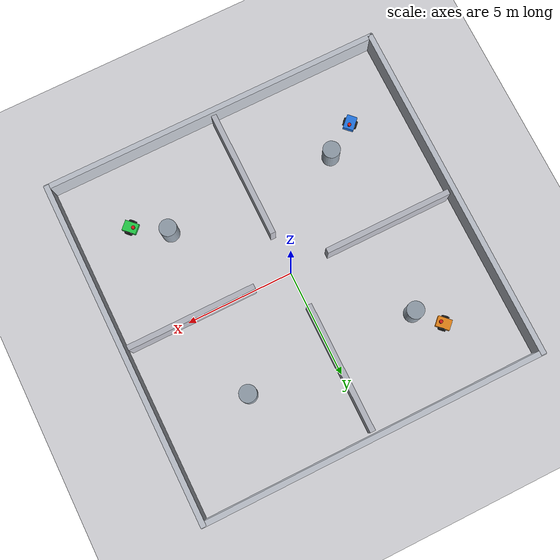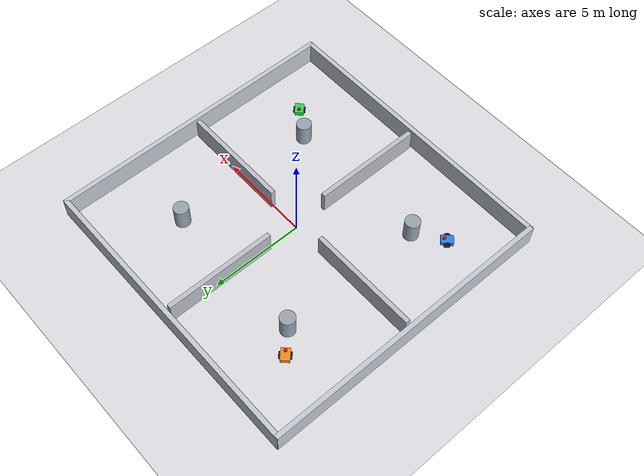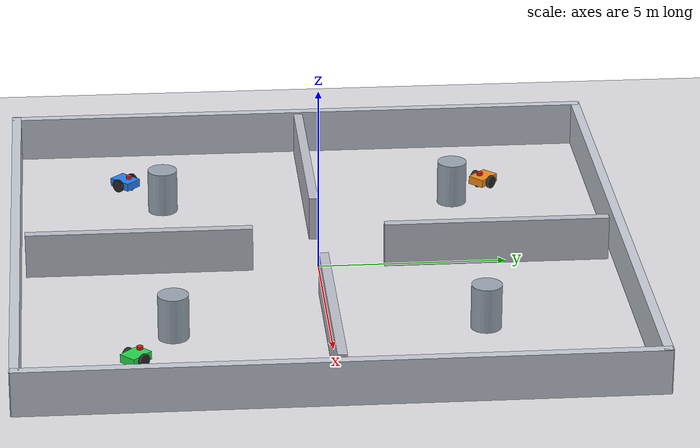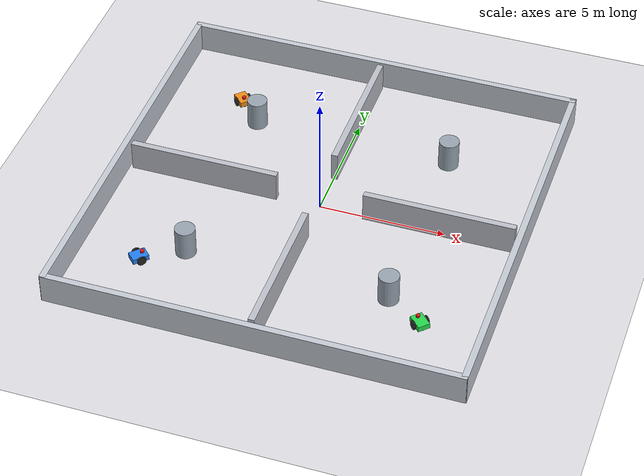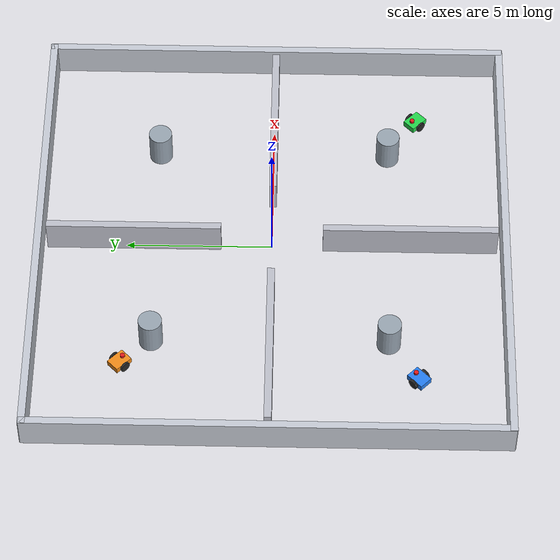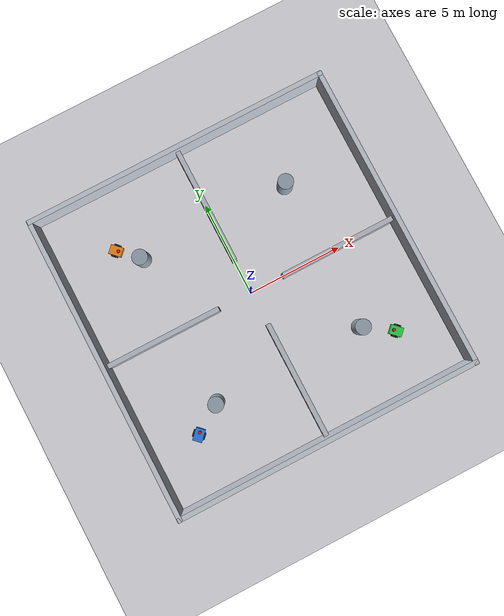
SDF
<?xml version="1.0" ?>
<sdf version="1.9">
  <world name="problem2_exploration_world">
    <physics name="1ms" type="ignored">
      <max_step_size>0.001</max_step_size>
      <real_time_factor>1.0</real_time_factor>
    </physics>
    <plugin filename="gz-sim-physics-system" name="gz::sim::systems::Physics"/>
    <plugin filename="gz-sim-user-commands-system" name="gz::sim::systems::UserCommands"/>
    <plugin filename="gz-sim-scene-broadcaster-system" name="gz::sim::systems::SceneBroadcaster"/>
    <plugin filename="gz-sim-sensors-system" name="gz::sim::systems::Sensors">
      <render_engine>ogre</render_engine>
    </plugin>

    <scene>
      <ambient>1.0 1.0 1.0 1</ambient>
      <background>0.90 0.94 0.98 1</background>
      <shadows>false</shadows>
    </scene>
    <light type="directional" name="sun">
      <diffuse>1 1 1 1</diffuse>
      <specular>0.4 0.4 0.4 1</specular>
      <direction>-0.5 0.5 -1</direction>
    </light>

    <!-- Ground Plane -->
    <model name="ground_plane">
      <static>true</static>
      <link name="link">
        <collision name="collision"><geometry><plane><normal>0 0 1</normal><size>40 40</size></plane></geometry></collision>
        <visual name="visual">
          <geometry><plane><normal>0 0 1</normal><size>40 40</size></plane></geometry>
          <material><ambient>0.88 0.88 0.90 1</ambient><diffuse>0.88 0.88 0.90 1</diffuse></material>
        </visual>
      </link>
    </model>

    <!-- Outer Perimeter Walls (16m x 16m) with Ambient + Diffuse -->
    <model name="wall_north">
      <static>true</static><pose>0 8.0 0.6 0 0 0</pose>
      <link name="link">
        <visual name="v"><geometry><box><size>16.2 0.25 1.2</size></box></geometry>
          <material><ambient>0.78 0.80 0.84 1</ambient><diffuse>0.78 0.80 0.84 1</diffuse></material>
        </visual>
        <collision name="c"><geometry><box><size>16.2 0.25 1.2</size></box></geometry></collision>
      </link>
    </model>
    <model name="wall_south">
      <static>true</static><pose>0 -8.0 0.6 0 0 0</pose>
      <link name="link">
        <visual name="v"><geometry><box><size>16.2 0.25 1.2</size></box></geometry>
          <material><ambient>0.78 0.80 0.84 1</ambient><diffuse>0.78 0.80 0.84 1</diffuse></material>
        </visual>
        <collision name="c"><geometry><box><size>16.2 0.25 1.2</size></box></geometry></collision>
      </link>
    </model>
    <model name="wall_east">
      <static>true</static><pose>8.0 0 0.6 0 0 0</pose>
      <link name="link">
        <visual name="v"><geometry><box><size>0.25 16.2 1.2</size></box></geometry>
          <material><ambient>0.78 0.80 0.84 1</ambient><diffuse>0.78 0.80 0.84 1</diffuse></material>
        </visual>
        <collision name="c"><geometry><box><size>0.25 16.2 1.2</size></box></geometry></collision>
      </link>
    </model>
    <model name="wall_west">
      <static>true</static><pose>-8.0 0 0.6 0 0 0</pose>
      <link name="link">
        <visual name="v"><geometry><box><size>0.25 16.2 1.2</size></box></geometry>
          <material><ambient>0.78 0.80 0.84 1</ambient><diffuse>0.78 0.80 0.84 1</diffuse></material>
        </visual>
        <collision name="c"><geometry><box><size>0.25 16.2 1.2</size></box></geometry></collision>
      </link>
    </model>

    <!-- Multi-Room Partition Walls with Wide Doorways (doorway width 3.5m) -->
    <model name="partition_h_west">
      <static>true</static><pose>-4.75 0.0 0.6 0 0 0</pose>
      <link name="link">
        <visual name="v"><geometry><box><size>6.0 0.25 1.2</size></box></geometry>
          <material><ambient>0.75 0.76 0.80 1</ambient><diffuse>0.75 0.76 0.80 1</diffuse></material>
        </visual>
        <collision name="c"><geometry><box><size>6.0 0.25 1.2</size></box></geometry></collision>
      </link>
    </model>
    <model name="partition_h_east">
      <static>true</static><pose>4.75 0.0 0.6 0 0 0</pose>
      <link name="link">
        <visual name="v"><geometry><box><size>6.0 0.25 1.2</size></box></geometry>
          <material><ambient>0.75 0.76 0.80 1</ambient><diffuse>0.75 0.76 0.80 1</diffuse></material>
        </visual>
        <collision name="c"><geometry><box><size>6.0 0.25 1.2</size></box></geometry></collision>
      </link>
    </model>
    <model name="partition_v_south">
      <static>true</static><pose>0.0 -4.75 0.6 0 0 0</pose>
      <link name="link">
        <visual name="v"><geometry><box><size>0.25 6.0 1.2</size></box></geometry>
          <material><ambient>0.75 0.76 0.80 1</ambient><diffuse>0.75 0.76 0.80 1</diffuse></material>
        </visual>
        <collision name="c"><geometry><box><size>0.25 6.0 1.2</size></box></geometry></collision>
      </link>
    </model>
    <model name="partition_v_north">
      <static>true</static><pose>0.0 4.75 0.6 0 0 0</pose>
      <link name="link">
        <visual name="v"><geometry><box><size>0.25 6.0 1.2</size></box></geometry>
          <material><ambient>0.75 0.76 0.80 1</ambient><diffuse>0.75 0.76 0.80 1</diffuse></material>
        </visual>
        <collision name="c"><geometry><box><size>0.25 6.0 1.2</size></box></geometry></collision>
      </link>
    </model>

    <!-- Interior Obstacles & Columns to Map -->
    <model name="column_sw">
      <static>true</static><pose>-4.0 -4.0 0.6 0 0 0</pose>
      <link name="link">
        <visual name="v"><geometry><cylinder><radius>0.4</radius><length>1.2</length></cylinder></geometry>
          <material><ambient>0.6 0.65 0.7 1</ambient><diffuse>0.6 0.65 0.7 1</diffuse></material>
        </visual>
        <collision name="c"><geometry><cylinder><radius>0.4</radius><length>1.2</length></cylinder></geometry></collision>
      </link>
    </model>
    <model name="column_se">
      <static>true</static><pose>4.0 -4.0 0.6 0 0 0</pose>
      <link name="link">
        <visual name="v"><geometry><cylinder><radius>0.4</radius><length>1.2</length></cylinder></geometry>
          <material><ambient>0.6 0.65 0.7 1</ambient><diffuse>0.6 0.65 0.7 1</diffuse></material>
        </visual>
        <collision name="c"><geometry><cylinder><radius>0.4</radius><length>1.2</length></cylinder></geometry></collision>
      </link>
    </model>
    <model name="column_nw">
      <static>true</static><pose>-4.0 4.0 0.6 0 0 0</pose>
      <link name="link">
        <visual name="v"><geometry><cylinder><radius>0.4</radius><length>1.2</length></cylinder></geometry>
          <material><ambient>0.6 0.65 0.7 1</ambient><diffuse>0.6 0.65 0.7 1</diffuse></material>
        </visual>
        <collision name="c"><geometry><cylinder><radius>0.4</radius><length>1.2</length></cylinder></geometry></collision>
      </link>
    </model>
    <model name="column_ne">
      <static>true</static><pose>4.0 4.0 0.6 0 0 0</pose>
      <link name="link">
        <visual name="v"><geometry><cylinder><radius>0.4</radius><length>1.2</length></cylinder></geometry>
          <material><ambient>0.6 0.65 0.7 1</ambient><diffuse>0.6 0.65 0.7 1</diffuse></material>
        </visual>
        <collision name="c"><geometry><cylinder><radius>0.4</radius><length>1.2</length></cylinder></geometry></collision>
      </link>
    </model>

    <!-- ==================== ROBOT 1 (Southwest Room, Blue) ==================== -->
    <model name="robot1">
      <pose>-5.5 -5.0 0.22 0 0 0.785</pose>
      <link name="base_link">
        <inertial><mass>1.2</mass><inertia><ixx>0.04</ixx><iyy>0.08</iyy><izz>0.10</izz></inertia></inertial>
        <collision name="c"><geometry><box><size>0.65 0.48 0.22</size></box></geometry></collision>
        <visual name="v"><geometry><box><size>0.65 0.48 0.22</size></box></geometry>
          <material><ambient>0.15 0.5 0.95 1</ambient><diffuse>0.15 0.5 0.95 1</diffuse></material>
        </visual>
      </link>
      <link name="left_wheel">
        <pose>0 0.28 -0.02 0 0 0</pose>
        <inertial><mass>0.2</mass><inertia><ixx>0.003</ixx><iyy>0.003</iyy><izz>0.003</izz></inertia></inertial>
        <collision name="c"><pose>0 0 0 1.5708 0 0</pose><geometry><cylinder><radius>0.18</radius><length>0.07</length></cylinder></geometry>
          <surface><friction><ode><mu>10.0</mu><mu2>10.0</mu2></ode></friction></surface>
        </collision>
        <visual name="v"><pose>0 0 0 1.5708 0 0</pose><geometry><cylinder><radius>0.18</radius><length>0.07</length></cylinder></geometry>
          <material><ambient>0.15 0.15 0.15 1</ambient><diffuse>0.15 0.15 0.15 1</diffuse></material>
        </visual>
      </link>
      <link name="right_wheel">
        <pose>0 -0.28 -0.02 0 0 0</pose>
        <inertial><mass>0.2</mass><inertia><ixx>0.003</ixx><iyy>0.003</iyy><izz>0.003</izz></inertia></inertial>
        <collision name="c"><pose>0 0 0 1.5708 0 0</pose><geometry><cylinder><radius>0.18</radius><length>0.07</length></cylinder></geometry>
          <surface><friction><ode><mu>10.0</mu><mu2>10.0</mu2></ode></friction></surface>
        </collision>
        <visual name="v"><pose>0 0 0 1.5708 0 0</pose><geometry><cylinder><radius>0.18</radius><length>0.07</length></cylinder></geometry>
          <material><ambient>0.15 0.15 0.15 1</ambient><diffuse>0.15 0.15 0.15 1</diffuse></material>
        </visual>
      </link>
      <link name="caster_f">
        <pose>0.24 0 -0.10 0 0 0</pose>
        <inertial><mass>0.05</mass><inertia><ixx>0.0001</ixx><iyy>0.0001</iyy><izz>0.0001</izz></inertia></inertial>
        <collision name="c"><geometry><sphere><radius>0.08</radius></sphere></geometry><surface><friction><ode><mu>0.01</mu><mu2>0.01</mu2></ode></friction></surface></collision>
        <visual name="v"><geometry><sphere><radius>0.08</radius></sphere></geometry><material><ambient>0.3 0.3 0.3 1</ambient><diffuse>0.3 0.3 0.3 1</diffuse></material></visual>
      </link>
      <link name="caster_r">
        <pose>-0.24 0 -0.10 0 0 0</pose>
        <inertial><mass>0.05</mass><inertia><ixx>0.0001</ixx><iyy>0.0001</iyy><izz>0.0001</izz></inertia></inertial>
        <collision name="c"><geometry><sphere><radius>0.08</radius></sphere></geometry><surface><friction><ode><mu>0.01</mu><mu2>0.01</mu2></ode></friction></surface></collision>
        <visual name="v"><geometry><sphere><radius>0.08</radius></sphere></geometry><material><ambient>0.3 0.3 0.3 1</ambient><diffuse>0.3 0.3 0.3 1</diffuse></material></visual>
      </link>
      <link name="lidar_link">
        <pose>0.15 0 0.20 0 0 0</pose>
        <inertial><mass>0.08</mass><inertia><ixx>0.0001</ixx><iyy>0.0001</iyy><izz>0.0001</izz></inertia></inertial>
        <visual name="v"><geometry><cylinder><radius>0.08</radius><length>0.08</length></cylinder></geometry><material><ambient>0.9 0.1 0.1 1</ambient><diffuse>0.9 0.1 0.1 1</diffuse></material></visual>
        <sensor name="lidar" type="gpu_lidar">
          <always_on>true</always_on><visualize>true</visualize><update_rate>10</update_rate>
          <topic>/robot1/scan</topic>
          <lidar>
            <scan><horizontal><samples>180</samples><resolution>1</resolution><min_angle>-3.14159</min_angle><max_angle>3.14159</max_angle></horizontal></scan>
            <range><min>0.25</min><max>8.0</max><resolution>0.03</resolution></range>
          </lidar>
        </sensor>
      </link>
      <joint name="lwj1" type="revolute"><parent>base_link</parent><child>left_wheel</child><axis><xyz>0 1 0</xyz></axis></joint>
      <joint name="rwj1" type="revolute"><parent>base_link</parent><child>right_wheel</child><axis><xyz>0 1 0</xyz></axis></joint>
      <joint name="cfj1" type="fixed"><parent>base_link</parent><child>caster_f</child></joint>
      <joint name="crj1" type="fixed"><parent>base_link</parent><child>caster_r</child></joint>
      <joint name="lj1" type="fixed"><parent>base_link</parent><child>lidar_link</child></joint>
      <plugin filename="gz-sim-diff-drive-system" name="gz::sim::systems::DiffDrive">
        <left_joint>lwj1</left_joint><right_joint>rwj1</right_joint>
        <wheel_separation>0.56</wheel_separation><wheel_radius>0.18</wheel_radius>
        <odom_publish_frequency>30</odom_publish_frequency>
        <odom_topic>/robot1/odometry</odom_topic><topic>/robot1/cmd_vel</topic>
      </plugin>
    </model>

    <!-- ==================== ROBOT 2 (Southeast Room, Green) ==================== -->
    <model name="robot2">
      <pose>5.5 -5.0 0.22 0 0 2.356</pose>
      <link name="base_link">
        <inertial><mass>1.2</mass><inertia><ixx>0.04</ixx><iyy>0.08</iyy><izz>0.10</izz></inertia></inertial>
        <collision name="c"><geometry><box><size>0.65 0.48 0.22</size></box></geometry></collision>
        <visual name="v"><geometry><box><size>0.65 0.48 0.22</size></box></geometry>
          <material><ambient>0.15 0.85 0.3 1</ambient><diffuse>0.15 0.85 0.3 1</diffuse></material>
        </visual>
      </link>
      <link name="left_wheel">
        <pose>0 0.28 -0.02 0 0 0</pose>
        <inertial><mass>0.2</mass><inertia><ixx>0.003</ixx><iyy>0.003</iyy><izz>0.003</izz></inertia></inertial>
        <collision name="c"><pose>0 0 0 1.5708 0 0</pose><geometry><cylinder><radius>0.18</radius><length>0.07</length></cylinder></geometry>
          <surface><friction><ode><mu>10.0</mu><mu2>10.0</mu2></ode></friction></surface>
        </collision>
        <visual name="v"><pose>0 0 0 1.5708 0 0</pose><geometry><cylinder><radius>0.18</radius><length>0.07</length></cylinder></geometry>
          <material><ambient>0.15 0.15 0.15 1</ambient><diffuse>0.15 0.15 0.15 1</diffuse></material>
        </visual>
      </link>
      <link name="right_wheel">
        <pose>0 -0.28 -0.02 0 0 0</pose>
        <inertial><mass>0.2</mass><inertia><ixx>0.003</ixx><iyy>0.003</iyy><izz>0.003</izz></inertia></inertial>
        <collision name="c"><pose>0 0 0 1.5708 0 0</pose><geometry><cylinder><radius>0.18</radius><length>0.07</length></cylinder></geometry>
          <surface><friction><ode><mu>10.0</mu><mu2>10.0</mu2></ode></friction></surface>
        </collision>
        <visual name="v"><pose>0 0 0 1.5708 0 0</pose><geometry><cylinder><radius>0.18</radius><length>0.07</length></cylinder></geometry>
          <material><ambient>0.15 0.15 0.15 1</ambient><diffuse>0.15 0.15 0.15 1</diffuse></material>
        </visual>
      </link>
      <link name="caster_f">
        <pose>0.24 0 -0.10 0 0 0</pose>
        <inertial><mass>0.05</mass><inertia><ixx>0.0001</ixx><iyy>0.0001</iyy><izz>0.0001</izz></inertia></inertial>
        <collision name="c"><geometry><sphere><radius>0.08</radius></sphere></geometry><surface><friction><ode><mu>0.01</mu><mu2>0.01</mu2></ode></friction></surface></collision>
        <visual name="v"><geometry><sphere><radius>0.08</radius></sphere></geometry><material><ambient>0.3 0.3 0.3 1</ambient><diffuse>0.3 0.3 0.3 1</diffuse></material></visual>
      </link>
      <link name="caster_r">
        <pose>-0.24 0 -0.10 0 0 0</pose>
        <inertial><mass>0.05</mass><inertia><ixx>0.0001</ixx><iyy>0.0001</iyy><izz>0.0001</izz></inertia></inertial>
        <collision name="c"><geometry><sphere><radius>0.08</radius></sphere></geometry><surface><friction><ode><mu>0.01</mu><mu2>0.01</mu2></ode></friction></surface></collision>
        <visual name="v"><geometry><sphere><radius>0.08</radius></sphere></geometry><material><ambient>0.3 0.3 0.3 1</ambient><diffuse>0.3 0.3 0.3 1</diffuse></material></visual>
      </link>
      <link name="lidar_link">
        <pose>0.15 0 0.20 0 0 0</pose>
        <inertial><mass>0.08</mass><inertia><ixx>0.0001</ixx><iyy>0.0001</iyy><izz>0.0001</izz></inertia></inertial>
        <visual name="v"><geometry><cylinder><radius>0.08</radius><length>0.08</length></cylinder></geometry><material><ambient>0.9 0.1 0.1 1</ambient><diffuse>0.9 0.1 0.1 1</diffuse></material></visual>
        <sensor name="lidar" type="gpu_lidar">
          <always_on>true</always_on><visualize>true</visualize><update_rate>10</update_rate>
          <topic>/robot2/scan</topic>
          <lidar>
            <scan><horizontal><samples>180</samples><resolution>1</resolution><min_angle>-3.14159</min_angle><max_angle>3.14159</max_angle></horizontal></scan>
            <range><min>0.25</min><max>8.0</max><resolution>0.03</resolution></range>
          </lidar>
        </sensor>
      </link>
      <joint name="lwj2" type="revolute"><parent>base_link</parent><child>left_wheel</child><axis><xyz>0 1 0</xyz></axis></joint>
      <joint name="rwj2" type="revolute"><parent>base_link</parent><child>right_wheel</child><axis><xyz>0 1 0</xyz></axis></joint>
      <joint name="cfj2" type="fixed"><parent>base_link</parent><child>caster_f</child></joint>
      <joint name="crj2" type="fixed"><parent>base_link</parent><child>caster_r</child></joint>
      <joint name="lj2" type="fixed"><parent>base_link</parent><child>lidar_link</child></joint>
      <plugin filename="gz-sim-diff-drive-system" name="gz::sim::systems::DiffDrive">
        <left_joint>lwj2</left_joint><right_joint>rwj2</right_joint>
        <wheel_separation>0.56</wheel_separation><wheel_radius>0.18</wheel_radius>
        <odom_publish_frequency>30</odom_publish_frequency>
        <odom_topic>/robot2/odometry</odom_topic><topic>/robot2/cmd_vel</topic>
      </plugin>
    </model>

    <!-- ==================== ROBOT 3 (Northwest Room, Orange) ==================== -->
    <model name="robot3">
      <pose>-5.0 5.0 0.22 0 0 -0.785</pose>
      <link name="base_link">
        <inertial><mass>1.2</mass><inertia><ixx>0.04</ixx><iyy>0.08</iyy><izz>0.10</izz></inertia></inertial>
        <collision name="c"><geometry><box><size>0.65 0.48 0.22</size></box></geometry></collision>
        <visual name="v"><geometry><box><size>0.65 0.48 0.22</size></box></geometry>
          <material><ambient>0.95 0.55 0.1 1</ambient><diffuse>0.95 0.55 0.1 1</diffuse></material>
        </visual>
      </link>
      <link name="left_wheel">
        <pose>0 0.28 -0.02 0 0 0</pose>
        <inertial><mass>0.2</mass><inertia><ixx>0.003</ixx><iyy>0.003</iyy><izz>0.003</izz></inertia></inertial>
        <collision name="c"><pose>0 0 0 1.5708 0 0</pose><geometry><cylinder><radius>0.18</radius><length>0.07</length></cylinder></geometry>
          <surface><friction><ode><mu>10.0</mu><mu2>10.0</mu2></ode></friction></surface>
        </collision>
        <visual name="v"><pose>0 0 0 1.5708 0 0</pose><geometry><cylinder><radius>0.18</radius><length>0.07</length></cylinder></geometry>
          <material><ambient>0.15 0.15 0.15 1</ambient><diffuse>0.15 0.15 0.15 1</diffuse></material>
        </visual>
      </link>
      <link name="right_wheel">
        <pose>0 -0.28 -0.02 0 0 0</pose>
        <inertial><mass>0.2</mass><inertia><ixx>0.003</ixx><iyy>0.003</iyy><izz>0.003</izz></inertia></inertial>
        <collision name="c"><pose>0 0 0 1.5708 0 0</pose><geometry><cylinder><radius>0.18</radius><length>0.07</length></cylinder></geometry>
          <surface><friction><ode><mu>10.0</mu><mu2>10.0</mu2></ode></friction></surface>
        </collision>
        <visual name="v"><pose>0 0 0 1.5708 0 0</pose><geometry><cylinder><radius>0.18</radius><length>0.07</length></cylinder></geometry>
          <material><ambient>0.15 0.15 0.15 1</ambient><diffuse>0.15 0.15 0.15 1</diffuse></material>
        </visual>
      </link>
      <link name="caster_f">
        <pose>0.24 0 -0.10 0 0 0</pose>
        <inertial><mass>0.05</mass><inertia><ixx>0.0001</ixx><iyy>0.0001</iyy><izz>0.0001</izz></inertia></inertial>
        <collision name="c"><geometry><sphere><radius>0.08</radius></sphere></geometry><surface><friction><ode><mu>0.01</mu><mu2>0.01</mu2></ode></friction></surface></collision>
        <visual name="v"><geometry><sphere><radius>0.08</radius></sphere></geometry><material><ambient>0.3 0.3 0.3 1</ambient><diffuse>0.3 0.3 0.3 1</diffuse></material></visual>
      </link>
      <link name="caster_r">
        <pose>-0.24 0 -0.10 0 0 0</pose>
        <inertial><mass>0.05</mass><inertia><ixx>0.0001</ixx><iyy>0.0001</iyy><izz>0.0001</izz></inertia></inertial>
        <collision name="c"><geometry><sphere><radius>0.08</radius></sphere></geometry><surface><friction><ode><mu>0.01</mu><mu2>0.01</mu2></ode></friction></surface></collision>
        <visual name="v"><geometry><sphere><radius>0.08</radius></sphere></geometry><material><ambient>0.3 0.3 0.3 1</ambient><diffuse>0.3 0.3 0.3 1</diffuse></material></visual>
      </link>
      <link name="lidar_link">
        <pose>0.15 0 0.20 0 0 0</pose>
        <inertial><mass>0.08</mass><inertia><ixx>0.0001</ixx><iyy>0.0001</iyy><izz>0.0001</izz></inertia></inertial>
        <visual name="v"><geometry><cylinder><radius>0.08</radius><length>0.08</length></cylinder></geometry><material><ambient>0.9 0.1 0.1 1</ambient><diffuse>0.9 0.1 0.1 1</diffuse></material></visual>
        <sensor name="lidar" type="gpu_lidar">
          <always_on>true</always_on><visualize>true</visualize><update_rate>10</update_rate>
          <topic>/robot3/scan</topic>
          <lidar>
            <scan><horizontal><samples>180</samples><resolution>1</resolution><min_angle>-3.14159</min_angle><max_angle>3.14159</max_angle></horizontal></scan>
            <range><min>0.25</min><max>8.0</max><resolution>0.03</resolution></range>
          </lidar>
        </sensor>
      </link>
      <joint name="lwj3" type="revolute"><parent>base_link</parent><child>left_wheel</child><axis><xyz>0 1 0</xyz></axis></joint>
      <joint name="rwj3" type="revolute"><parent>base_link</parent><child>right_wheel</child><axis><xyz>0 1 0</xyz></axis></joint>
      <joint name="cfj3" type="fixed"><parent>base_link</parent><child>caster_f</child></joint>
      <joint name="crj3" type="fixed"><parent>base_link</parent><child>caster_r</child></joint>
      <joint name="lj3" type="fixed"><parent>base_link</parent><child>lidar_link</child></joint>
      <plugin filename="gz-sim-diff-drive-system" name="gz::sim::systems::DiffDrive">
        <left_joint>lwj3</left_joint><right_joint>rwj3</right_joint>
        <wheel_separation>0.56</wheel_separation><wheel_radius>0.18</wheel_radius>
        <odom_publish_frequency>30</odom_publish_frequency>
        <odom_topic>/robot3/odometry</odom_topic><topic>/robot3/cmd_vel</topic>
      </plugin>
    </model>

  </world>
</sdf>
